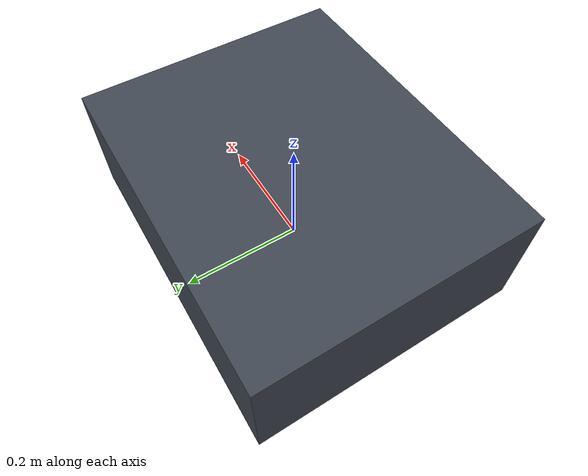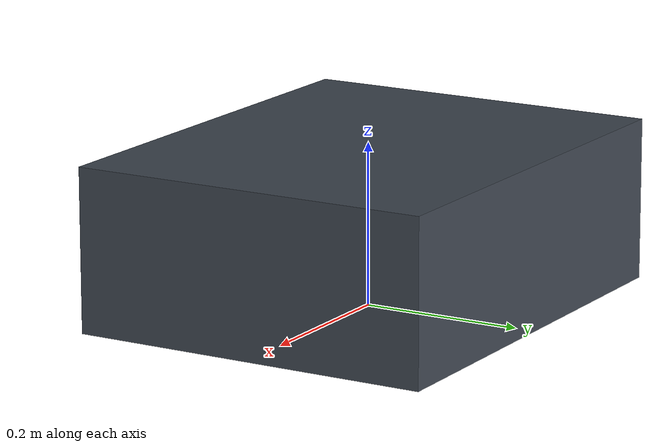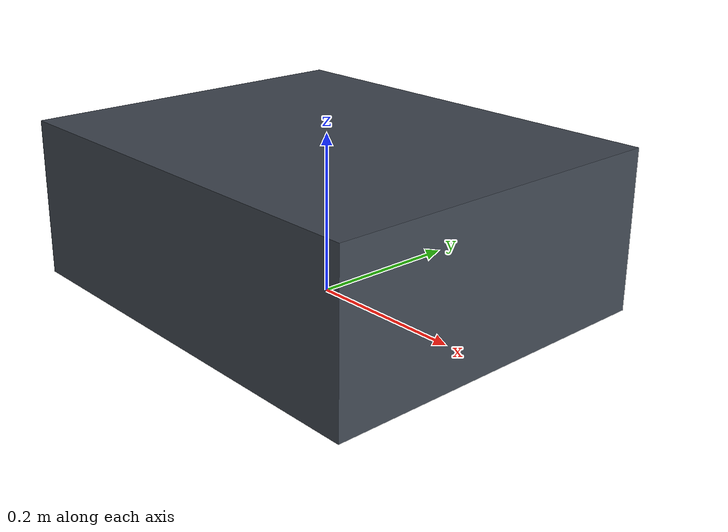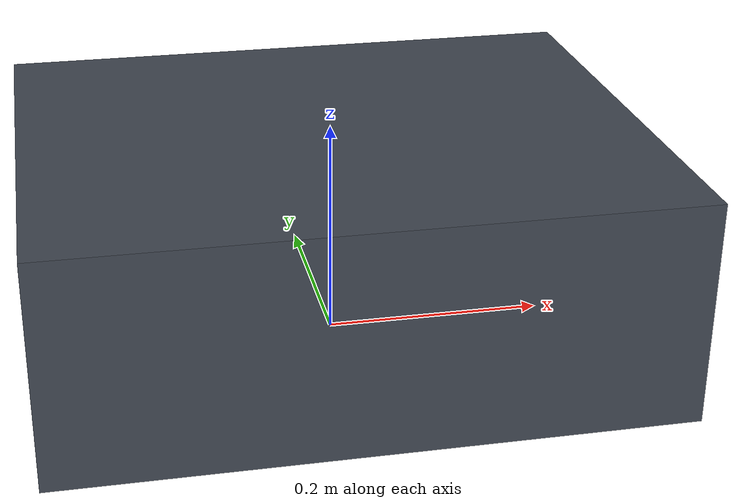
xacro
<?xml version="1.0"?>
<robot xmlns:xacro="http://www.ros.org/wiki/xacro" name="nav_grasp_robot">
  <xacro:arg name="base_frame" default="base_link"/>
  <xacro:arg name="lidar_frame" default="livox_frame"/>
  <xacro:arg name="manipulator_base_frame" default="piper_base_link"/>

  <xacro:arg name="lidar_x" default="0.15"/>
  <xacro:arg name="lidar_y" default="0.0"/>
  <xacro:arg name="lidar_z" default="0.10"/>
  <xacro:arg name="lidar_roll" default="0.0"/>
  <xacro:arg name="lidar_pitch" default="0.0"/>
  <xacro:arg name="lidar_yaw" default="0.0"/>

  <xacro:arg name="manipulator_x" default="0.0"/>
  <xacro:arg name="manipulator_y" default="0.0"/>
  <xacro:arg name="manipulator_z" default="0.15"/>
  <xacro:arg name="manipulator_yaw" default="0.0"/>

  <link name="base_footprint"/>
  <link name="$(arg base_frame)">
    <visual>
      <origin xyz="0 0 0.10" rpy="0 0 0"/>
      <geometry><box size="0.55 0.45 0.20"/></geometry>
      <material name="base_gray"><color rgba="0.25 0.28 0.32 1"/></material>
    </visual>
    <collision>
      <origin xyz="0 0 0.10" rpy="0 0 0"/>
      <geometry><box size="0.55 0.45 0.20"/></geometry>
    </collision>
  </link>
  <joint name="base_footprint_joint" type="fixed">
    <parent link="base_footprint"/>
    <child link="$(arg base_frame)"/>
    <origin xyz="0 0 0" rpy="0 0 0"/>
  </joint>

  <link name="$(arg lidar_frame)"/>
  <joint name="lidar_mount_joint" type="fixed">
    <parent link="$(arg base_frame)"/>
    <child link="$(arg lidar_frame)"/>
    <origin
      xyz="$(arg lidar_x) $(arg lidar_y) $(arg lidar_z)"
      rpy="$(arg lidar_roll) $(arg lidar_pitch) $(arg lidar_yaw)"/>
  </joint>

  <link name="$(arg manipulator_base_frame)"/>
  <joint name="manipulator_mount_joint" type="fixed">
    <parent link="$(arg base_frame)"/>
    <child link="$(arg manipulator_base_frame)"/>
    <origin
      xyz="$(arg manipulator_x) $(arg manipulator_y) $(arg manipulator_z)"
      rpy="0 0 $(arg manipulator_yaw)"/>
  </joint>
</robot>
